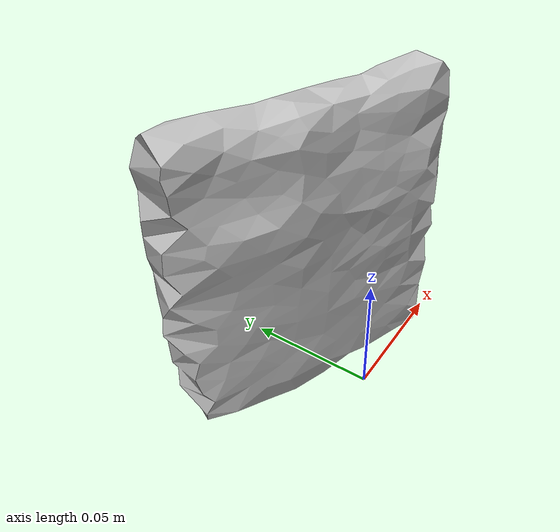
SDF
<?xml version="1.0" ?>
<sdf version="1.4">
  <model name="sharpie_accent_tank_style_highlighters">
    <link name="sharpie_accent_tank_style_highlighters_link">
      <inertial>
        <pose>0 0 0 0 0 0</pose>
        <mass>0.08</mass>
      </inertial>

      <visual name="sharpie_accent_tank_style_highlighters_visual">
        <pose>0 0 0 0 0 0</pose>
        <material>
          <script>
            <uri>model://sharpie_accent_tank_style_highlighters/materials/scripts</uri>
            <uri>model://sharpie_accent_tank_style_highlighters/materials/textures</uri>
            <name>sharpie_accent_tank_style_highlighters</name>
          </script>
        </material>
        <geometry>
          <mesh>
            <uri>model://sharpie_accent_tank_style_highlighters/meshes/sharpie_accent_tank_style_highlighters.dae</uri>
          </mesh>
        </geometry>
      </visual>

      <collision name="sharpie_accent_tank_style_highlighters_collision">
        <pose>0 0 0 0 0 0</pose>
        <geometry>
          <mesh>
            <uri>model://sharpie_accent_tank_style_highlighters/meshes/sharpie_accent_tank_style_highlighters.dae</uri>
          </mesh>
        </geometry>
        <surface>
          <friction>
            <ode>
              <mu>0.8</mu>
              <mu2>0.8</mu2>
            </ode>
          </friction>
        </surface>
      </collision>

    </link>
  </model>
</sdf>
